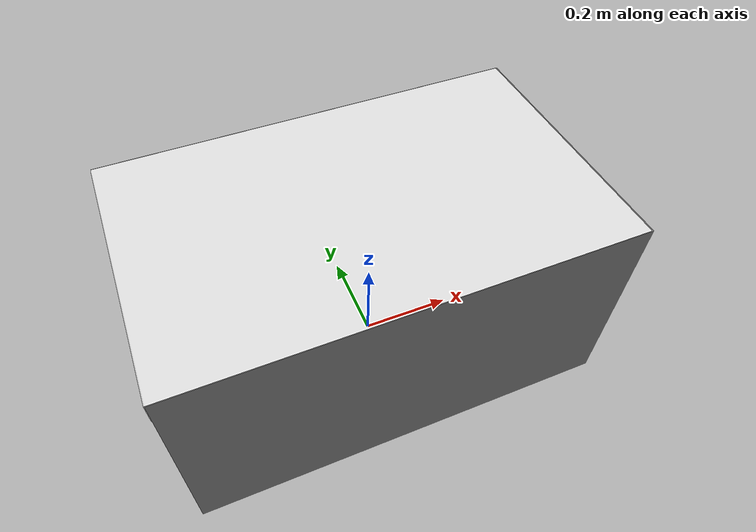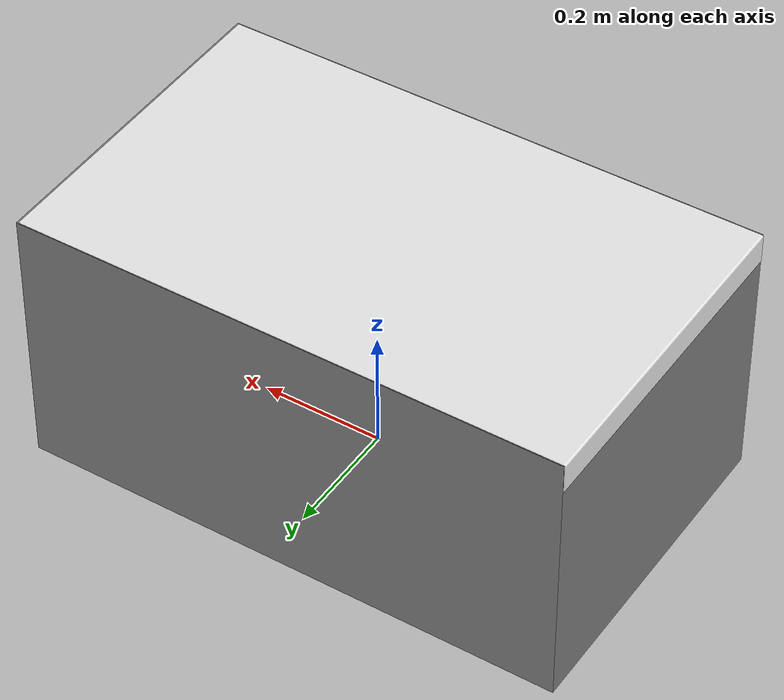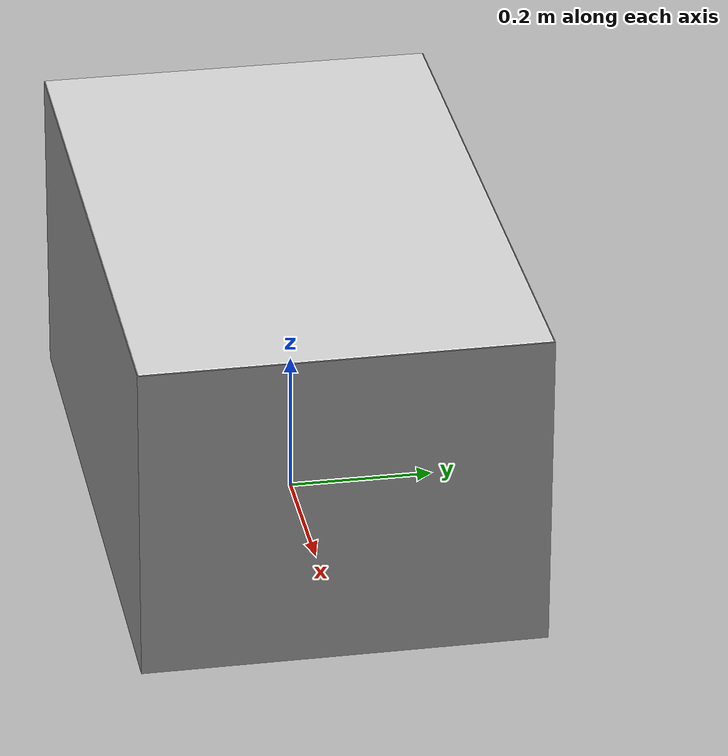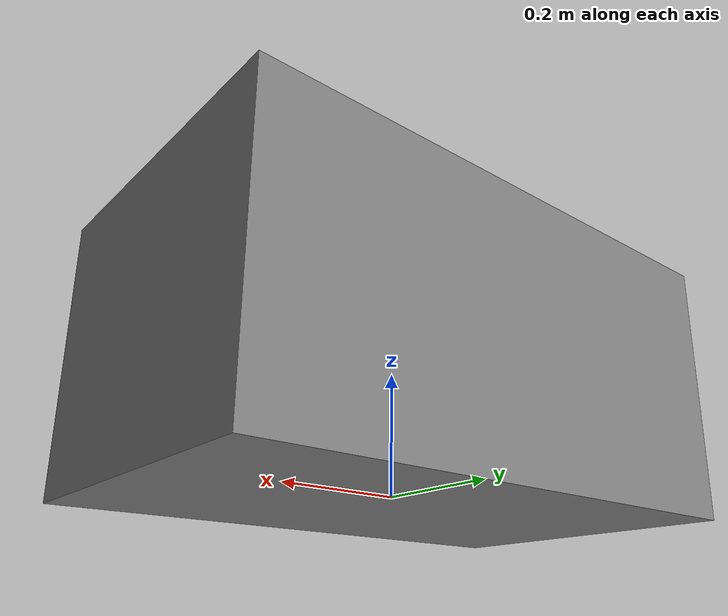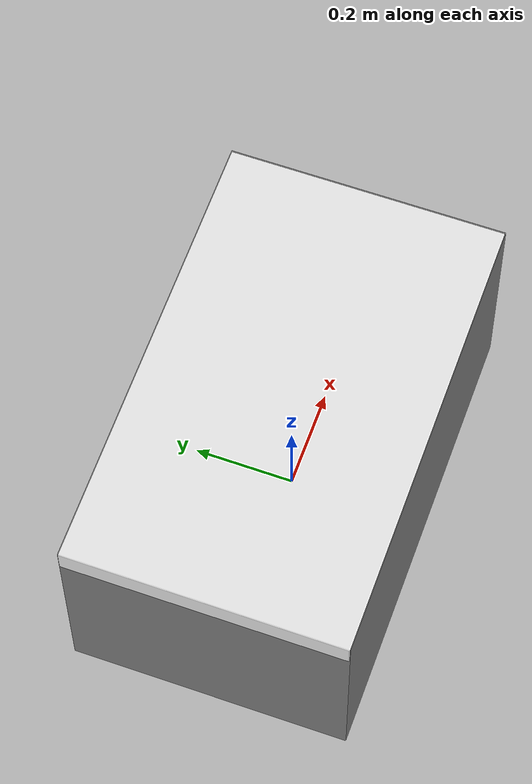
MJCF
<mujoco model="table">
  <default>
    <default class="visual">
      <geom group="1" type="mesh" contype="0" conaffinity="0"/>
    </default>
    <default class="collision">
      <geom group="0" type="mesh"/>
    </default>
  </default>
  <asset>
    <texture type="2d" name="zhuozi_white" file="zhuozi_white.png"/>
    <material name="Ml_Zuozi_01" texture="zhuozi_white" specular="0.5" shininess="0.5"/>
    <mesh name="table" file="table.obj"/>
    <mesh name="table_collision_0" file="table_collision_0.obj"/>
    <mesh name="table_collision_1" file="table_collision_1.obj"/>
    <mesh name="table_collision_2" file="table_collision_2.obj"/>
    <mesh name="table_collision_3" file="table_collision_3.obj"/>
    <mesh name="table_collision_4" file="table_collision_4.obj"/>
    <mesh name="table_collision_5" file="table_collision_5.obj"/>
    <mesh name="table_collision_6" file="table_collision_6.obj"/>
    <mesh name="table_collision_7" file="table_collision_7.obj"/>
    <mesh name="table_collision_8" file="table_collision_8.obj"/>
    <mesh name="table_collision_9" file="table_collision_9.obj"/>
    <mesh name="table_collision_10" file="table_collision_10.obj"/>
    <mesh name="table_collision_11" file="table_collision_11.obj"/>
    <mesh name="table_collision_12" file="table_collision_12.obj"/>
    <mesh name="table_collision_13" file="table_collision_13.obj"/>
    <mesh name="table_collision_14" file="table_collision_14.obj"/>
    <mesh name="table_collision_15" file="table_collision_15.obj"/>
    <mesh name="table_collision_16" file="table_collision_16.obj"/>
    <mesh name="table_collision_17" file="table_collision_17.obj"/>
    <mesh name="table_collision_18" file="table_collision_18.obj"/>
  </asset>
  <worldbody>
    <body>
      <body name="object">
        <geom material="Ml_Zuozi_01" mesh="table" class="visual"/>
        <geom type="box" size="0.45 0.275 0.223" pos="-0.02 0 0.202" class="collision"/>
      </body>
    </body>
  </worldbody>
</mujoco>
